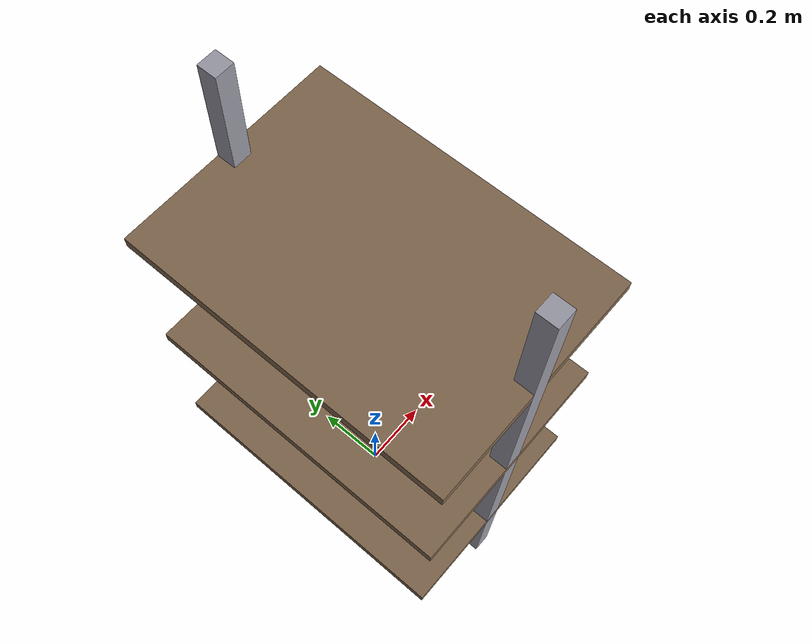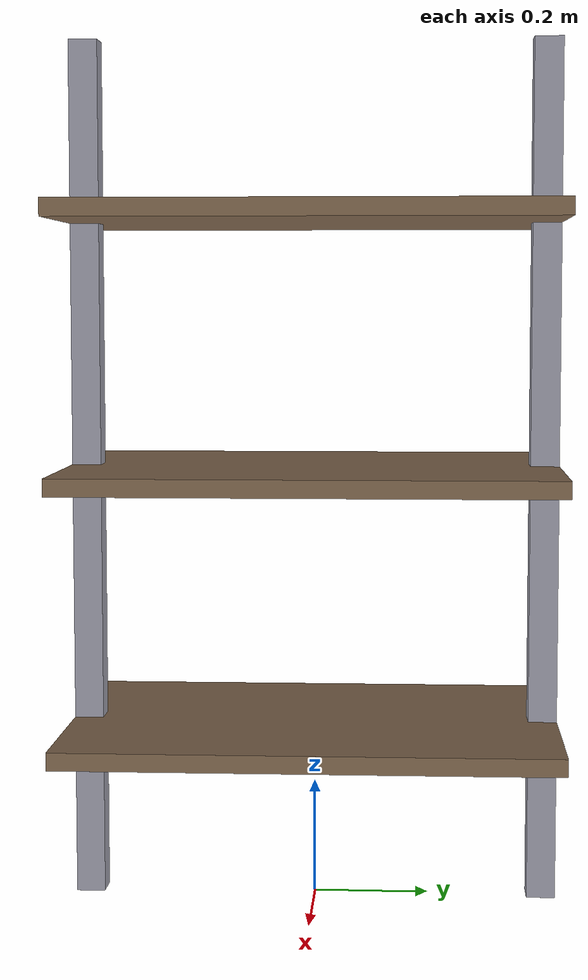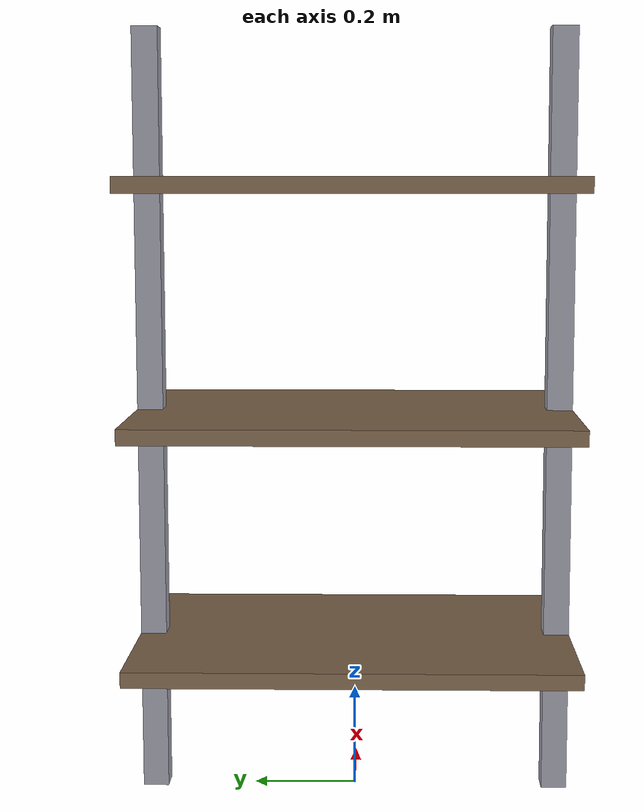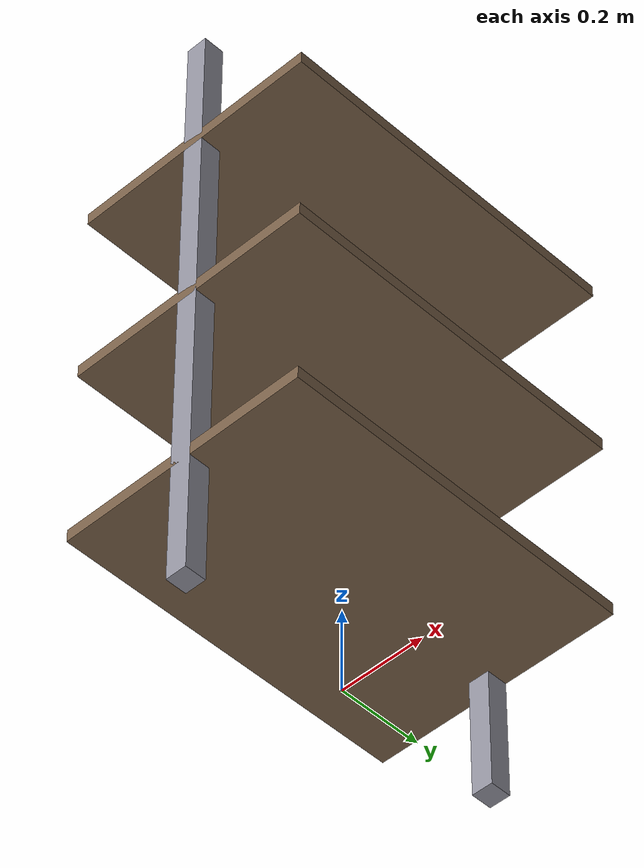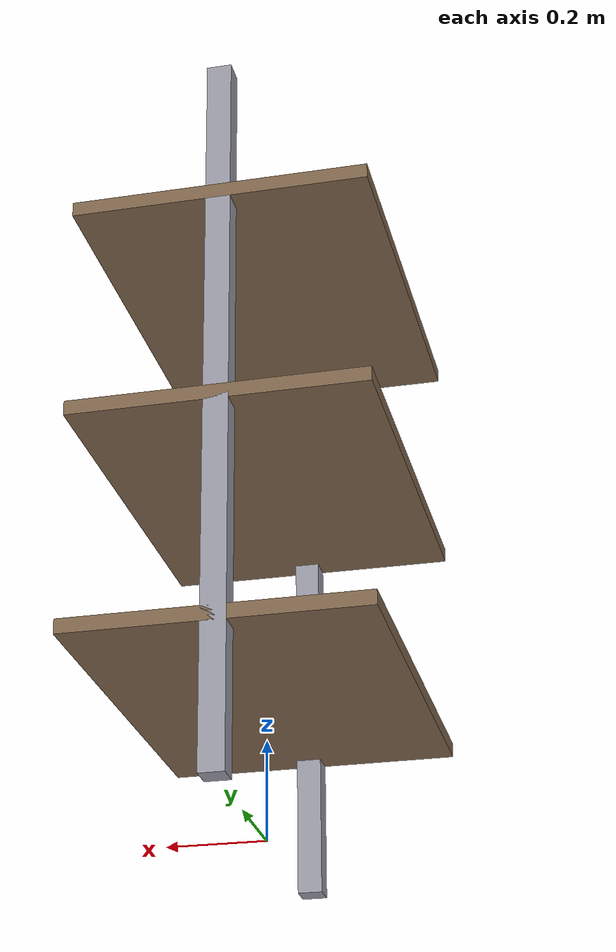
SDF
<?xml version="1.0"?>
<sdf version="1.6">
  <model name="shelf_unit">
    <static>true</static>

    <!-- Left upright -->
    <link name="left_upright">
      <pose>0 -0.4 0.75 0 0 0</pose>
      <visual name="visual">
        <geometry><box><size>0.05 0.05 1.5</size></box></geometry>
        <material>
          <ambient>0.5 0.5 0.55 1</ambient>
          <diffuse>0.6 0.6 0.65 1</diffuse>
        </material>
      </visual>
      <collision name="collision">
        <geometry><box><size>0.05 0.05 1.5</size></box></geometry>
      </collision>
    </link>

    <!-- Right upright -->
    <link name="right_upright">
      <pose>0 0.4 0.75 0 0 0</pose>
      <visual name="visual">
        <geometry><box><size>0.05 0.05 1.5</size></box></geometry>
        <material>
          <ambient>0.5 0.5 0.55 1</ambient>
          <diffuse>0.6 0.6 0.65 1</diffuse>
        </material>
      </visual>
      <collision name="collision">
        <geometry><box><size>0.05 0.05 1.5</size></box></geometry>
      </collision>
    </link>

    <!-- Bottom shelf -->
    <link name="shelf_bottom">
      <pose>0 0 0.3 0 0 0</pose>
      <visual name="visual">
        <geometry><box><size>0.6 0.85 0.03</size></box></geometry>
        <material>
          <ambient>0.4 0.3 0.2 1</ambient>
          <diffuse>0.5 0.4 0.3 1</diffuse>
        </material>
      </visual>
      <collision name="collision">
        <geometry><box><size>0.6 0.85 0.03</size></box></geometry>
      </collision>
    </link>

    <!-- Middle shelf -->
    <link name="shelf_middle">
      <pose>0 0 0.75 0 0 0</pose>
      <visual name="visual">
        <geometry><box><size>0.6 0.85 0.03</size></box></geometry>
        <material>
          <ambient>0.4 0.3 0.2 1</ambient>
          <diffuse>0.5 0.4 0.3 1</diffuse>
        </material>
      </visual>
      <collision name="collision">
        <geometry><box><size>0.6 0.85 0.03</size></box></geometry>
      </collision>
    </link>

    <!-- Top shelf -->
    <link name="shelf_top">
      <pose>0 0 1.2 0 0 0</pose>
      <visual name="visual">
        <geometry><box><size>0.6 0.85 0.03</size></box></geometry>
        <material>
          <ambient>0.4 0.3 0.2 1</ambient>
          <diffuse>0.5 0.4 0.3 1</diffuse>
        </material>
      </visual>
      <collision name="collision">
        <geometry><box><size>0.6 0.85 0.03</size></box></geometry>
      </collision>
    </link>

  </model>
</sdf>
